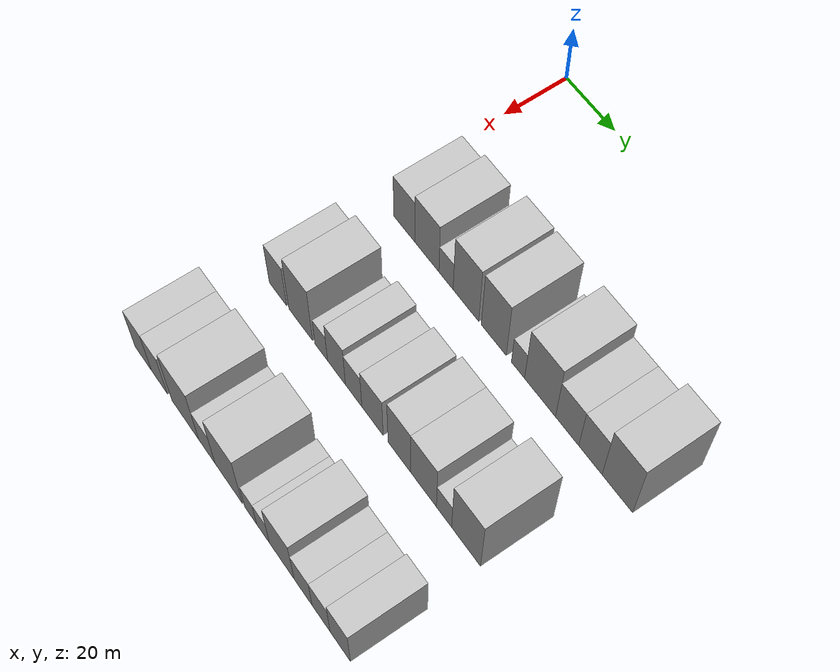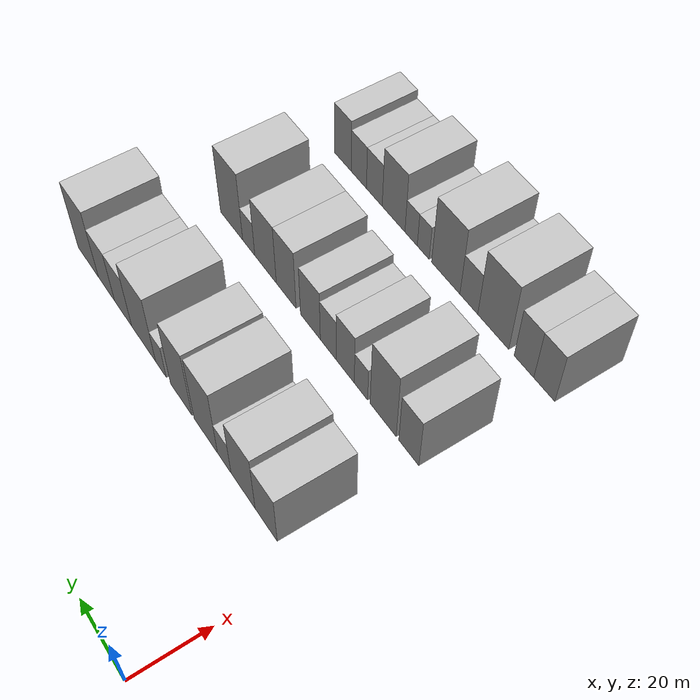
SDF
<sdf version="1.6">
 <world name="default">
  <model name="building_38">
   <static>1</static>
   <pose>50.0000 13.2375 0 0.000000 0.000000 0.000000</pose>
   <link name="link">
    <pose>0 0 9.00 0 0 0</pose>
    <collision name="collision"><geometry><box><size>20.0000 8.9883 18.0000</size></box></geometry></collision>
    <visual name="visual">
     <cast_shadows>0</cast_shadows>
     <geometry><box><size>20.0000 8.9883 18.0000</size></box></geometry>
     <material>
      <script>
       <uri>model://HANNAS_wall/materials/scripts</uri>
       <uri>model://HANNAS_wall/materials/textures</uri>
       <name>vrc/HANNAS_wall</name>
      </script>
     </material>
    </visual>
   </link>
  </model>
  <model name="building_39">
   <static>1</static>
   <pose>50.0000 22.7996 0 0.000000 0.000000 0.000000</pose>
   <link name="link">
    <pose>0 0 10.50 0 0 0</pose>
    <collision name="collision"><geometry><box><size>20.0000 10.1359 21.0000</size></box></geometry></collision>
    <visual name="visual">
     <cast_shadows>0</cast_shadows>
     <geometry><box><size>20.0000 10.1359 21.0000</size></box></geometry>
     <material>
      <script>
       <uri>model://HANNAS_wall/materials/scripts</uri>
       <uri>model://HANNAS_wall/materials/textures</uri>
       <name>vrc/HANNAS_wall</name>
      </script>
     </material>
    </visual>
   </link>
  </model>
  <model name="building_40">
   <static>1</static>
   <pose>50.0000 30.7865 0 0.000000 0.000000 0.000000</pose>
   <link name="link">
    <pose>0 0 6.00 0 0 0</pose>
    <collision name="collision"><geometry><box><size>20.0000 5.8380 12.0000</size></box></geometry></collision>
    <visual name="visual">
     <cast_shadows>0</cast_shadows>
     <geometry><box><size>20.0000 5.8380 12.0000</size></box></geometry>
     <material>
      <script>
       <uri>model://HANNAS_wall/materials/scripts</uri>
       <uri>model://HANNAS_wall/materials/textures</uri>
       <name>vrc/HANNAS_wall</name>
      </script>
     </material>
    </visual>
   </link>
  </model>
  <model name="building_41">
   <static>1</static>
   <pose>50.0000 38.9239 0 0.000000 0.000000 0.000000</pose>
   <link name="link">
    <pose>0 0 12.00 0 0 0</pose>
    <collision name="collision"><geometry><box><size>20.0000 10.4368 24.0000</size></box></geometry></collision>
    <visual name="visual">
     <cast_shadows>0</cast_shadows>
     <geometry><box><size>20.0000 10.4368 24.0000</size></box></geometry>
     <material>
      <script>
       <uri>model://HANNAS_wall/materials/scripts</uri>
       <uri>model://HANNAS_wall/materials/textures</uri>
       <name>vrc/HANNAS_wall</name>
      </script>
     </material>
    </visual>
   </link>
  </model>
  <model name="building_42">
   <static>1</static>
   <pose>50.0000 50.1091 0 0.000000 0.000000 0.000000</pose>
   <link name="link">
    <pose>0 0 12.00 0 0 0</pose>
    <collision name="collision"><geometry><box><size>20.0000 9.9337 24.0000</size></box></geometry></collision>
    <visual name="visual">
     <cast_shadows>0</cast_shadows>
     <geometry><box><size>20.0000 9.9337 24.0000</size></box></geometry>
     <material>
      <script>
       <uri>model://HANNAS_wall/materials/scripts</uri>
       <uri>model://HANNAS_wall/materials/textures</uri>
       <name>vrc/HANNAS_wall</name>
      </script>
     </material>
    </visual>
   </link>
  </model>
  <model name="building_43">
   <static>1</static>
   <pose>50.0000 59.6390 0 0.000000 0.000000 0.000000</pose>
   <link name="link">
    <pose>0 0 6.00 0 0 0</pose>
    <collision name="collision"><geometry><box><size>20.0000 5.1261 12.0000</size></box></geometry></collision>
    <visual name="visual">
     <cast_shadows>0</cast_shadows>
     <geometry><box><size>20.0000 5.1261 12.0000</size></box></geometry>
     <material>
      <script>
       <uri>model://HANNAS_wall/materials/scripts</uri>
       <uri>model://HANNAS_wall/materials/textures</uri>
       <name>vrc/HANNAS_wall</name>
      </script>
     </material>
    </visual>
   </link>
  </model>
  <model name="building_44">
   <static>1</static>
   <pose>50.0000 68.1139 0 0.000000 0.000000 0.000000</pose>
   <link name="link">
    <pose>0 0 12.00 0 0 0</pose>
    <collision name="collision"><geometry><box><size>20.0000 11.8237 24.0000</size></box></geometry></collision>
    <visual name="visual">
     <cast_shadows>0</cast_shadows>
     <geometry><box><size>20.0000 11.8237 24.0000</size></box></geometry>
     <material>
      <script>
       <uri>model://HANNAS_wall/materials/scripts</uri>
       <uri>model://HANNAS_wall/materials/textures</uri>
       <name>vrc/HANNAS_wall</name>
      </script>
     </material>
    </visual>
   </link>
  </model>
  <model name="building_45">
   <static>1</static>
   <pose>50.0000 78.3907 0 0.000000 0.000000 0.000000</pose>
   <link name="link">
    <pose>0 0 9.00 0 0 0</pose>
    <collision name="collision"><geometry><box><size>20.0000 8.7300 18.0000</size></box></geometry></collision>
    <visual name="visual">
     <cast_shadows>0</cast_shadows>
     <geometry><box><size>20.0000 8.7300 18.0000</size></box></geometry>
     <material>
      <script>
       <uri>model://HANNAS_wall/materials/scripts</uri>
       <uri>model://HANNAS_wall/materials/textures</uri>
       <name>vrc/HANNAS_wall</name>
      </script>
     </material>
    </visual>
   </link>
  </model>
  <model name="building_46">
   <static>1</static>
   <pose>50.0000 87.0380 0 0.000000 0.000000 0.000000</pose>
   <link name="link">
    <pose>0 0 9.00 0 0 0</pose>
    <collision name="collision"><geometry><box><size>20.0000 8.5646 18.0000</size></box></geometry></collision>
    <visual name="visual">
     <cast_shadows>0</cast_shadows>
     <geometry><box><size>20.0000 8.5646 18.0000</size></box></geometry>
     <material>
      <script>
       <uri>model://HANNAS_wall/materials/scripts</uri>
       <uri>model://HANNAS_wall/materials/textures</uri>
       <name>vrc/HANNAS_wall</name>
      </script>
     </material>
    </visual>
   </link>
  </model>
  <model name="building_47">
   <static>1</static>
   <pose>50.0000 96.8350 0 0.000000 0.000000 0.000000</pose>
   <link name="link">
    <pose>0 0 12.00 0 0 0</pose>
    <collision name="collision"><geometry><box><size>20.0000 11.0292 24.0000</size></box></geometry></collision>
    <visual name="visual">
     <cast_shadows>0</cast_shadows>
     <geometry><box><size>20.0000 11.0292 24.0000</size></box></geometry>
     <material>
      <script>
       <uri>model://HANNAS_wall/materials/scripts</uri>
       <uri>model://HANNAS_wall/materials/textures</uri>
       <name>vrc/HANNAS_wall</name>
      </script>
     </material>
    </visual>
   </link>
  </model>
  <model name="building_122">
   <static>1</static>
   <pose>85.0000 10.8468 0 0.000000 0.000000 0.000000</pose>
   <link name="link">
    <pose>0 0 9.00 0 0 0</pose>
    <collision name="collision"><geometry><box><size>20.0000 7.6238 18.0000</size></box></geometry></collision>
    <visual name="visual">
     <cast_shadows>0</cast_shadows>
     <geometry><box><size>20.0000 7.6238 18.0000</size></box></geometry>
     <material>
      <script>
       <uri>model://HANNAS_wall/materials/scripts</uri>
       <uri>model://HANNAS_wall/materials/textures</uri>
       <name>vrc/HANNAS_wall</name>
      </script>
     </material>
    </visual>
   </link>
  </model>
  <model name="building_123">
   <static>1</static>
   <pose>85.0000 20.7957 0 0.000000 0.000000 0.000000</pose>
   <link name="link">
    <pose>0 0 12.00 0 0 0</pose>
    <collision name="collision"><geometry><box><size>20.0000 10.2740 24.0000</size></box></geometry></collision>
    <visual name="visual">
     <cast_shadows>0</cast_shadows>
     <geometry><box><size>20.0000 10.2740 24.0000</size></box></geometry>
     <material>
      <script>
       <uri>model://HANNAS_wall/materials/scripts</uri>
       <uri>model://HANNAS_wall/materials/textures</uri>
       <name>vrc/HANNAS_wall</name>
      </script>
     </material>
    </visual>
   </link>
  </model>
  <model name="building_124">
   <static>1</static>
   <pose>85.0000 29.6329 0 0.000000 0.000000 0.000000</pose>
   <link name="link">
    <pose>0 0 6.00 0 0 0</pose>
    <collision name="collision"><geometry><box><size>20.0000 5.4002 12.0000</size></box></geometry></collision>
    <visual name="visual">
     <cast_shadows>0</cast_shadows>
     <geometry><box><size>20.0000 5.4002 12.0000</size></box></geometry>
     <material>
      <script>
       <uri>model://HANNAS_wall/materials/scripts</uri>
       <uri>model://HANNAS_wall/materials/textures</uri>
       <name>vrc/HANNAS_wall</name>
      </script>
     </material>
    </visual>
   </link>
  </model>
  <model name="building_125">
   <static>1</static>
   <pose>85.0000 36.0879 0 0.000000 0.000000 0.000000</pose>
   <link name="link">
    <pose>0 0 9.00 0 0 0</pose>
    <collision name="collision"><geometry><box><size>20.0000 7.5098 18.0000</size></box></geometry></collision>
    <visual name="visual">
     <cast_shadows>0</cast_shadows>
     <geometry><box><size>20.0000 7.5098 18.0000</size></box></geometry>
     <material>
      <script>
       <uri>model://HANNAS_wall/materials/scripts</uri>
       <uri>model://HANNAS_wall/materials/textures</uri>
       <name>vrc/HANNAS_wall</name>
      </script>
     </material>
    </visual>
   </link>
  </model>
  <model name="building_126">
   <static>1</static>
   <pose>85.0000 43.2332 0 0.000000 0.000000 0.000000</pose>
   <link name="link">
    <pose>0 0 7.50 0 0 0</pose>
    <collision name="collision"><geometry><box><size>20.0000 6.7808 15.0000</size></box></geometry></collision>
    <visual name="visual">
     <cast_shadows>0</cast_shadows>
     <geometry><box><size>20.0000 6.7808 15.0000</size></box></geometry>
     <material>
      <script>
       <uri>model://HANNAS_wall/materials/scripts</uri>
       <uri>model://HANNAS_wall/materials/textures</uri>
       <name>vrc/HANNAS_wall</name>
      </script>
     </material>
    </visual>
   </link>
  </model>
  <model name="building_127">
   <static>1</static>
   <pose>85.0000 50.9589 0 0.000000 0.000000 0.000000</pose>
   <link name="link">
    <pose>0 0 9.00 0 0 0</pose>
    <collision name="collision"><geometry><box><size>20.0000 8.6706 18.0000</size></box></geometry></collision>
    <visual name="visual">
     <cast_shadows>0</cast_shadows>
     <geometry><box><size>20.0000 8.6706 18.0000</size></box></geometry>
     <material>
      <script>
       <uri>model://HANNAS_wall/materials/scripts</uri>
       <uri>model://HANNAS_wall/materials/textures</uri>
       <name>vrc/HANNAS_wall</name>
      </script>
     </material>
    </visual>
   </link>
  </model>
  <model name="building_128">
   <static>1</static>
   <pose>85.0000 61.7650 0 0.000000 0.000000 0.000000</pose>
   <link name="link">
    <pose>0 0 10.50 0 0 0</pose>
    <collision name="collision"><geometry><box><size>20.0000 8.9417 21.0000</size></box></geometry></collision>
    <visual name="visual">
     <cast_shadows>0</cast_shadows>
     <geometry><box><size>20.0000 8.9417 21.0000</size></box></geometry>
     <material>
      <script>
       <uri>model://HANNAS_wall/materials/scripts</uri>
       <uri>model://HANNAS_wall/materials/textures</uri>
       <name>vrc/HANNAS_wall</name>
      </script>
     </material>
    </visual>
   </link>
  </model>
  <model name="building_129">
   <static>1</static>
   <pose>85.0000 71.2674 0 0.000000 0.000000 0.000000</pose>
   <link name="link">
    <pose>0 0 10.50 0 0 0</pose>
    <collision name="collision"><geometry><box><size>20.0000 10.0631 21.0000</size></box></geometry></collision>
    <visual name="visual">
     <cast_shadows>0</cast_shadows>
     <geometry><box><size>20.0000 10.0631 21.0000</size></box></geometry>
     <material>
      <script>
       <uri>model://HANNAS_wall/materials/scripts</uri>
       <uri>model://HANNAS_wall/materials/textures</uri>
       <name>vrc/HANNAS_wall</name>
      </script>
     </material>
    </visual>
   </link>
  </model>
  <model name="building_130">
   <static>1</static>
   <pose>85.0000 79.2062 0 0.000000 0.000000 0.000000</pose>
   <link name="link">
    <pose>0 0 6.00 0 0 0</pose>
    <collision name="collision"><geometry><box><size>20.0000 5.8144 12.0000</size></box></geometry></collision>
    <visual name="visual">
     <cast_shadows>0</cast_shadows>
     <geometry><box><size>20.0000 5.8144 12.0000</size></box></geometry>
     <material>
      <script>
       <uri>model://HANNAS_wall/materials/scripts</uri>
       <uri>model://HANNAS_wall/materials/textures</uri>
       <name>vrc/HANNAS_wall</name>
      </script>
     </material>
    </visual>
   </link>
  </model>
  <model name="building_131">
   <static>1</static>
   <pose>85.0000 87.5602 0 0.000000 0.000000 0.000000</pose>
   <link name="link">
    <pose>0 0 12.00 0 0 0</pose>
    <collision name="collision"><geometry><box><size>20.0000 10.8936 24.0000</size></box></geometry></collision>
    <visual name="visual">
     <cast_shadows>0</cast_shadows>
     <geometry><box><size>20.0000 10.8936 24.0000</size></box></geometry>
     <material>
      <script>
       <uri>model://HANNAS_wall/materials/scripts</uri>
       <uri>model://HANNAS_wall/materials/textures</uri>
       <name>vrc/HANNAS_wall</name>
      </script>
     </material>
    </visual>
   </link>
  </model>
  <model name="building_207">
   <static>1</static>
   <pose>120.0000 7.2881 0 0.000000 0.000000 0.000000</pose>
   <link name="link">
    <pose>0 0 9.00 0 0 0</pose>
    <collision name="collision"><geometry><box><size>20.0000 7.5856 18.0000</size></box></geometry></collision>
    <visual name="visual">
     <cast_shadows>0</cast_shadows>
     <geometry><box><size>20.0000 7.5856 18.0000</size></box></geometry>
     <material>
      <script>
       <uri>model://HANNAS_wall/materials/scripts</uri>
       <uri>model://HANNAS_wall/materials/textures</uri>
       <name>vrc/HANNAS_wall</name>
      </script>
     </material>
    </visual>
   </link>
  </model>
  <model name="building_208">
   <static>1</static>
   <pose>120.0000 14.7070 0 0.000000 0.000000 0.000000</pose>
   <link name="link">
    <pose>0 0 9.00 0 0 0</pose>
    <collision name="collision"><geometry><box><size>20.0000 7.2523 18.0000</size></box></geometry></collision>
    <visual name="visual">
     <cast_shadows>0</cast_shadows>
     <geometry><box><size>20.0000 7.2523 18.0000</size></box></geometry>
     <material>
      <script>
       <uri>model://HANNAS_wall/materials/scripts</uri>
       <uri>model://HANNAS_wall/materials/textures</uri>
       <name>vrc/HANNAS_wall</name>
      </script>
     </material>
    </visual>
   </link>
  </model>
  <model name="building_209">
   <static>1</static>
   <pose>120.0000 26.3052 0 0.000000 0.000000 0.000000</pose>
   <link name="link">
    <pose>0 0 12.00 0 0 0</pose>
    <collision name="collision"><geometry><box><size>20.0000 11.9439 24.0000</size></box></geometry></collision>
    <visual name="visual">
     <cast_shadows>0</cast_shadows>
     <geometry><box><size>20.0000 11.9439 24.0000</size></box></geometry>
     <material>
      <script>
       <uri>model://HANNAS_wall/materials/scripts</uri>
       <uri>model://HANNAS_wall/materials/textures</uri>
       <name>vrc/HANNAS_wall</name>
      </script>
     </material>
    </visual>
   </link>
  </model>
  <model name="building_210">
   <static>1</static>
   <pose>120.0000 35.8146 0 0.000000 0.000000 0.000000</pose>
   <link name="link">
    <pose>0 0 7.50 0 0 0</pose>
    <collision name="collision"><geometry><box><size>20.0000 7.0750 15.0000</size></box></geometry></collision>
    <visual name="visual">
     <cast_shadows>0</cast_shadows>
     <geometry><box><size>20.0000 7.0750 15.0000</size></box></geometry>
     <material>
      <script>
       <uri>model://HANNAS_wall/materials/scripts</uri>
       <uri>model://HANNAS_wall/materials/textures</uri>
       <name>vrc/HANNAS_wall</name>
      </script>
     </material>
    </visual>
   </link>
  </model>
  <model name="building_211">
   <static>1</static>
   <pose>120.0000 45.1506 0 0.000000 0.000000 0.000000</pose>
   <link name="link">
    <pose>0 0 12.00 0 0 0</pose>
    <collision name="collision"><geometry><box><size>20.0000 11.5970 24.0000</size></box></geometry></collision>
    <visual name="visual">
     <cast_shadows>0</cast_shadows>
     <geometry><box><size>20.0000 11.5970 24.0000</size></box></geometry>
     <material>
      <script>
       <uri>model://HANNAS_wall/materials/scripts</uri>
       <uri>model://HANNAS_wall/materials/textures</uri>
       <name>vrc/HANNAS_wall</name>
      </script>
     </material>
    </visual>
   </link>
  </model>
  <model name="building_212">
   <static>1</static>
   <pose>120.0000 54.4614 0 0.000000 0.000000 0.000000</pose>
   <link name="link">
    <pose>0 0 6.00 0 0 0</pose>
    <collision name="collision"><geometry><box><size>20.0000 5.0247 12.0000</size></box></geometry></collision>
    <visual name="visual">
     <cast_shadows>0</cast_shadows>
     <geometry><box><size>20.0000 5.0247 12.0000</size></box></geometry>
     <material>
      <script>
       <uri>model://HANNAS_wall/materials/scripts</uri>
       <uri>model://HANNAS_wall/materials/textures</uri>
       <name>vrc/HANNAS_wall</name>
      </script>
     </material>
    </visual>
   </link>
  </model>
  <model name="building_213">
   <static>1</static>
   <pose>120.0000 59.6111 0 0.000000 0.000000 0.000000</pose>
   <link name="link">
    <pose>0 0 6.00 0 0 0</pose>
    <collision name="collision"><geometry><box><size>20.0000 5.2747 12.0000</size></box></geometry></collision>
    <visual name="visual">
     <cast_shadows>0</cast_shadows>
     <geometry><box><size>20.0000 5.2747 12.0000</size></box></geometry>
     <material>
      <script>
       <uri>model://HANNAS_wall/materials/scripts</uri>
       <uri>model://HANNAS_wall/materials/textures</uri>
       <name>vrc/HANNAS_wall</name>
      </script>
     </material>
    </visual>
   </link>
  </model>
  <model name="building_214">
   <static>1</static>
   <pose>120.0000 67.2452 0 0.000000 0.000000 0.000000</pose>
   <link name="link">
    <pose>0 0 10.50 0 0 0</pose>
    <collision name="collision"><geometry><box><size>20.0000 9.9934 21.0000</size></box></geometry></collision>
    <visual name="visual">
     <cast_shadows>0</cast_shadows>
     <geometry><box><size>20.0000 9.9934 21.0000</size></box></geometry>
     <material>
      <script>
       <uri>model://HANNAS_wall/materials/scripts</uri>
       <uri>model://HANNAS_wall/materials/textures</uri>
       <name>vrc/HANNAS_wall</name>
      </script>
     </material>
    </visual>
   </link>
  </model>
  <model name="building_215">
   <static>1</static>
   <pose>120.0000 75.8105 0 0.000000 0.000000 0.000000</pose>
   <link name="link">
    <pose>0 0 7.50 0 0 0</pose>
    <collision name="collision"><geometry><box><size>20.0000 7.1372 15.0000</size></box></geometry></collision>
    <visual name="visual">
     <cast_shadows>0</cast_shadows>
     <geometry><box><size>20.0000 7.1372 15.0000</size></box></geometry>
     <material>
      <script>
       <uri>model://HANNAS_wall/materials/scripts</uri>
       <uri>model://HANNAS_wall/materials/textures</uri>
       <name>vrc/HANNAS_wall</name>
      </script>
     </material>
    </visual>
   </link>
  </model>
  <model name="building_216">
   <static>1</static>
   <pose>120.0000 82.9022 0 0.000000 0.000000 0.000000</pose>
   <link name="link">
    <pose>0 0 7.50 0 0 0</pose>
    <collision name="collision"><geometry><box><size>20.0000 7.0462 15.0000</size></box></geometry></collision>
    <visual name="visual">
     <cast_shadows>0</cast_shadows>
     <geometry><box><size>20.0000 7.0462 15.0000</size></box></geometry>
     <material>
      <script>
       <uri>model://HANNAS_wall/materials/scripts</uri>
       <uri>model://HANNAS_wall/materials/textures</uri>
       <name>vrc/HANNAS_wall</name>
      </script>
     </material>
    </visual>
   </link>
  </model>
  <model name="building_217">
   <static>1</static>
   <pose>120.0000 90.3285 0 0.000000 0.000000 0.000000</pose>
   <link name="link">
    <pose>0 0 9.00 0 0 0</pose>
    <collision name="collision"><geometry><box><size>20.0000 7.8063 18.0000</size></box></geometry></collision>
    <visual name="visual">
     <cast_shadows>0</cast_shadows>
     <geometry><box><size>20.0000 7.8063 18.0000</size></box></geometry>
     <material>
      <script>
       <uri>model://HANNAS_wall/materials/scripts</uri>
       <uri>model://HANNAS_wall/materials/textures</uri>
       <name>vrc/HANNAS_wall</name>
      </script>
     </material>
    </visual>
   </link>
  </model>
 </world>
</sdf>
